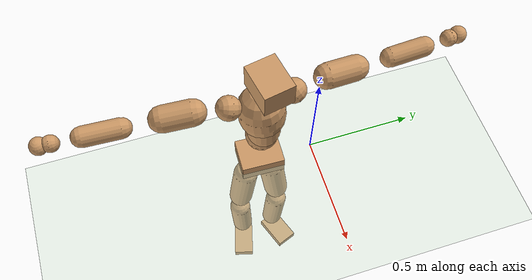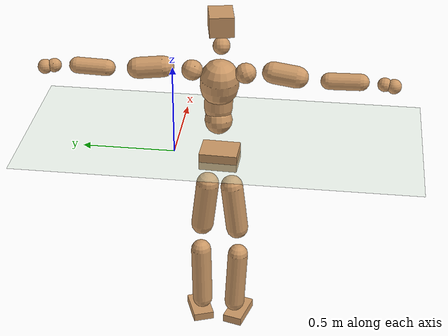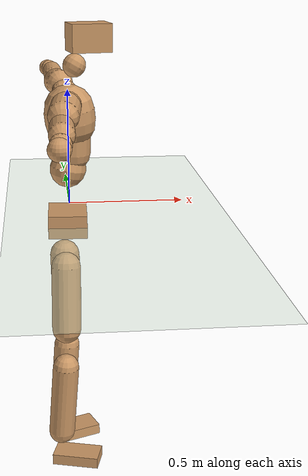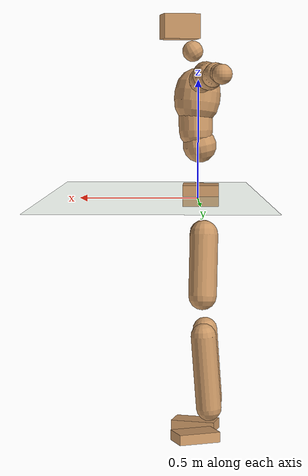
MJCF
<mujoco model="humanoid">
  <compiler coordinate="local" angle="radian"/>
  <default>
    <joint damping="0.0" armature="0.01" stiffness="0.0" limited="true"/>
    <geom conaffinity="1" condim="3" contype="7" margin="0.001" rgba="0.8 0.6 .4 1"/>
  </default>
  <asset>
    <texture type="skybox" builtin="gradient" rgb1=".4 .5 .6" rgb2="0 0 0" width="100" height="100"/>
    <texture builtin="flat" height="1278" mark="cross" markrgb="1 1 1" name="texgeom" random="0.01" rgb1="0.8 0.6 0.4" rgb2="0.8 0.6 0.4" type="cube" width="127"/>
    <texture builtin="checker" height="100" name="texplane" rgb1="0 0 0" rgb2="0.8 0.8 0.8" type="2d" width="100"/>
    <material name="MatPlane" reflectance="0.5" shininess="1" specular="1" texrepeat="60 60" texture="texplane"/>
    <material name="geom" texture="texgeom" texuniform="true"/>
  </asset>
  <worldbody>
    <light cutoff="100" diffuse="1 1 1" dir="-0 0 -1.3" directional="true" exponent="1" pos="0 0 1.3" specular=".1 .1 .1"/>
    <geom conaffinity="1" condim="3" name="floor" pos="0 0 0" rgba="0.8 0.9 0.8 1" size="100 100 .2" type="plane" material="MatPlane"/>
    <body name="Pelvis" pos="-0.0051 -0.249 0.0088">
      <freejoint name="Pelvis"/>
      <geom type="box" contype="1" conaffinity="1" density="5359.37496" pos="-0.0132 0.0005 -0.0093" size="0.0788 0.1017 0.0467" quat="0.9998 0.0000 0.0000 -0.0180" name="Pelvis"/>
      <body name="L_Hip" pos="-0.0287 0.0541 -0.089">
        <joint name="L_Hip_x" type="hinge" pos="0 0 0" axis="1 0 0" stiffness="1600" damping="160" armature="0.02" range="-180.0000 180.0000"/>
        <joint name="L_Hip_y" type="hinge" pos="0 0 0" axis="0 1 0" stiffness="1600" damping="160" armature="0.02" range="-180.0000 180.0000"/>
        <joint name="L_Hip_z" type="hinge" pos="0 0 0" axis="0 0 1" stiffness="1600" damping="160" armature="0.02" range="-180.0000 180.0000"/>
        <geom type="capsule" contype="1" conaffinity="1" density="2040.816327" size="0.062" fromto="0.0020 0.0107 -0.0914 0.0080 0.0421 -0.3607" name="L_Hip"/>
        <body name="L_Knee" pos="0.0101 0.0527 -0.4521">
          <joint name="L_Knee_x" type="hinge" pos="0 0 0" axis="1 0 0" stiffness="1600" damping="160" armature="0.02" range="-180.0000 180.0000"/>
          <joint name="L_Knee_y" type="hinge" pos="0 0 0" axis="0 1 0" stiffness="1600" damping="160" armature="0.02" range="-180.0000 180.0000"/>
          <joint name="L_Knee_z" type="hinge" pos="0 0 0" axis="0 0 1" stiffness="1600" damping="160" armature="0.02" range="-180.0000 180.0000"/>
          <geom type="capsule" contype="1" conaffinity="1" density="1234.567901" size="0.0561" fromto="-0.0067 -0.0026 -0.0859 -0.0319 -0.0125 -0.4105" name="L_Knee"/>
          <body name="L_Ankle" pos="-0.0386 -0.0151 -0.4964">
            <joint name="L_Ankle_x" type="hinge" pos="0 0 0" axis="1 0 0" stiffness="1600" damping="160" armature="0.02" range="-180.0000 180.0000"/>
            <joint name="L_Ankle_y" type="hinge" pos="0 0 0" axis="0 1 0" stiffness="1600" damping="160" armature="0.02" range="-180.0000 180.0000"/>
            <joint name="L_Ankle_z" type="hinge" pos="0 0 0" axis="0 0 1" stiffness="1600" damping="160" armature="0.02" range="-180.0000 180.0000"/>
            <geom type="box" contype="1" conaffinity="1" density="999.999938" pos="0.0663 0.0249 -0.0347" size="0.0946 0.0573 0.0229" quat="0.9839 0.0000 0.0000 0.1789" name="L_Ankle"/>
            <body name="L_Toe" pos="0.1325 0.0499 -0.0693">
              <joint name="L_Toe_x" type="hinge" pos="0 0 0" axis="1 0 0" stiffness="1000" damping="100" armature="0.02" range="-180.0000 180.0000"/>
              <joint name="L_Toe_y" type="hinge" pos="0 0 0" axis="0 1 0" stiffness="1000" damping="100" armature="0.02" range="-180.0000 180.0000"/>
              <joint name="L_Toe_z" type="hinge" pos="0 0 0" axis="0 0 1" stiffness="1000" damping="100" armature="0.02" range="-180.0000 180.0000"/>
              <geom type="box" contype="1" conaffinity="1" density="7631052.855685" pos="0.0000 0.0000 0.0365" size="0.0011 0.0027 0.0012" quat="0.9831 0.0000 0.0000 0.1829" name="L_Toe"/>
            </body>
          </body>
        </body>
      </body>
      <body name="R_Hip" pos="-0.0252 -0.0565 -0.0982">
        <joint name="R_Hip_x" type="hinge" pos="0 0 0" axis="1 0 0" stiffness="1600" damping="160" armature="0.02" range="-180.0000 180.0000"/>
        <joint name="R_Hip_y" type="hinge" pos="0 0 0" axis="0 1 0" stiffness="1600" damping="160" armature="0.02" range="-180.0000 180.0000"/>
        <joint name="R_Hip_z" type="hinge" pos="0 0 0" axis="0 0 1" stiffness="1600" damping="160" armature="0.02" range="-180.0000 180.0000"/>
        <geom type="capsule" contype="1" conaffinity="1" density="2040.816327" size="0.061" fromto="-0.0012 -0.0108 -0.0903 -0.0049 -0.0429 -0.3580" name="R_Hip"/>
        <body name="R_Knee" pos="-0.0062 -0.0537 -0.4483">
          <joint name="R_Knee_x" type="hinge" pos="0 0 0" axis="1 0 0" stiffness="1600" damping="160" armature="0.02" range="-180.0000 180.0000"/>
          <joint name="R_Knee_y" type="hinge" pos="0 0 0" axis="0 1 0" stiffness="1600" damping="160" armature="0.02" range="-180.0000 180.0000"/>
          <joint name="R_Knee_z" type="hinge" pos="0 0 0" axis="0 0 1" stiffness="1600" damping="160" armature="0.02" range="-180.0000 180.0000"/>
          <geom type="capsule" contype="1" conaffinity="1" density="1234.567901" size="0.056" fromto="-0.0061 0.0039 -0.0857 -0.0291 0.0184 -0.4050" name="R_Knee"/>
          <body name="R_Ankle" pos="-0.0352 0.0223 -0.4906">
            <joint name="R_Ankle_x" type="hinge" pos="0 0 0" axis="1 0 0" stiffness="1600" damping="160" armature="0.02" range="-180.0000 180.0000"/>
            <joint name="R_Ankle_y" type="hinge" pos="0 0 0" axis="0 1 0" stiffness="1600" damping="160" armature="0.02" range="-180.0000 180.0000"/>
            <joint name="R_Ankle_z" type="hinge" pos="0 0 0" axis="0 0 1" stiffness="1600" damping="160" armature="0.02" range="-180.0000 180.0000"/>
            <geom type="box" contype="1" conaffinity="1" density="1000" pos="0.0719 -0.0197 -0.0359" size="0.0999 0.0541 0.0237" quat="0.9911 0.0000 0.0000 -0.1334" name="R_Ankle"/>
            <body name="R_Toe" pos="0.1439 -0.0395 -0.0719">
              <joint name="R_Toe_x" type="hinge" pos="0 0 0" axis="1 0 0" stiffness="1000" damping="100" armature="0.02" range="-180.0000 180.0000"/>
              <joint name="R_Toe_y" type="hinge" pos="0 0 0" axis="0 1 0" stiffness="1000" damping="100" armature="0.02" range="-180.0000 180.0000"/>
              <joint name="R_Toe_z" type="hinge" pos="0 0 0" axis="0 0 1" stiffness="1000" damping="100" armature="0.02" range="-180.0000 180.0000"/>
              <geom type="box" contype="1" conaffinity="1" density="8385273.209025" pos="0.0000 0.0000 0.0378" size="0.001 0.0026 0.0013" quat="0.9921 0.0000 0.0000 -0.1253" name="R_Toe"/>
            </body>
          </body>
        </body>
      </body>
      <body name="Torso" pos="-0.025 0.0052 0.1311">
        <joint name="Torso_x" type="hinge" pos="0 0 0" axis="1 0 0" stiffness="2000" damping="200" armature="0.02" range="-180.0000 180.0000"/>
        <joint name="Torso_y" type="hinge" pos="0 0 0" axis="0 1 0" stiffness="2000" damping="200" armature="0.02" range="-180.0000 180.0000"/>
        <joint name="Torso_z" type="hinge" pos="0 0 0" axis="0 0 1" stiffness="2000" damping="200" armature="0.02" range="-180.0000 180.0000"/>
        <geom type="capsule" contype="1" conaffinity="1" density="2040.816327" size="0.074" fromto="0.0173 0.0025 0.0764 0.0177 0.0026 0.0783" name="Torso"/>
        <body name="Spine" pos="0.0349 0.0052 0.1547">
          <joint name="Spine_x" type="hinge" pos="0 0 0" axis="1 0 0" stiffness="2000" damping="200" armature="0.02" range="-180.0000 180.0000"/>
          <joint name="Spine_y" type="hinge" pos="0 0 0" axis="0 1 0" stiffness="2000" damping="200" armature="0.02" range="-180.0000 180.0000"/>
          <joint name="Spine_z" type="hinge" pos="0 0 0" axis="0 0 1" stiffness="2000" damping="200" armature="0.02" range="-180.0000 180.0000"/>
          <geom type="capsule" contype="1" conaffinity="1" density="2040.816327" size="0.075" fromto="0.0022 -0.0025 0.0749 -0.0004 0.0004 -0.0127" name="Spine"/>
          <body name="Chest" pos="0.0018 -0.0021 0.0622">
            <joint name="Chest_x" type="hinge" pos="0 0 0" axis="1 0 0" stiffness="2000" damping="200" armature="0.02" range="-180.0000 180.0000"/>
            <joint name="Chest_y" type="hinge" pos="0 0 0" axis="0 1 0" stiffness="2000" damping="200" armature="0.02" range="-180.0000 180.0000"/>
            <joint name="Chest_z" type="hinge" pos="0 0 0" axis="0 0 1" stiffness="2000" damping="200" armature="0.02" range="-180.0000 180.0000"/>
            <geom type="capsule" contype="1" conaffinity="1" density="2040.816327" size="0.1012" fromto="-0.0106 -0.0055 0.1005 -0.0055 -0.0029 0.0521" name="Chest"/>
            <body name="Neck" pos="-0.0157 -0.0157 0.2222">
              <joint name="Neck_x" type="hinge" pos="0 0 0" axis="1 0 0" stiffness="1000" damping="100" armature="0.02" range="-180.0000 180.0000"/>
              <joint name="Neck_y" type="hinge" pos="0 0 0" axis="0 1 0" stiffness="1000" damping="100" armature="0.02" range="-180.0000 180.0000"/>
              <joint name="Neck_z" type="hinge" pos="0 0 0" axis="0 0 1" stiffness="1000" damping="100" armature="0.02" range="-180.0000 180.0000"/>
              <geom type="capsule" contype="1" conaffinity="1" density="1000" size="0.0452" fromto="0.0278 0.0044 0.0517 0.0288 0.0046 0.0534" name="Neck"/>
              <body name="Head" pos="0.0566 0.009 0.1051">
                <joint name="Head_x" type="hinge" pos="0 0 0" axis="1 0 0" stiffness="1000" damping="100" armature="0.02" range="-180.0000 180.0000"/>
                <joint name="Head_y" type="hinge" pos="0 0 0" axis="0 1 0" stiffness="1000" damping="100" armature="0.02" range="-180.0000 180.0000"/>
                <joint name="Head_z" type="hinge" pos="0 0 0" axis="0 0 1" stiffness="1000" damping="100" armature="0.02" range="-180.0000 180.0000"/>
                <geom type="box" contype="1" conaffinity="1" density="2249.999807" pos="0.0293 0.0055 0.0535" size="0.0792 0.0632 0.0541" quat="0.9957 0.0000 0.0000 0.0922" name="Head"/>
              </body>
            </body>
            <body name="L_Thorax" pos="-0.0139 0.0748 0.1191">
              <joint name="L_Thorax_x" type="hinge" pos="0 0 0" axis="1 0 0" stiffness="1000" damping="100" armature="0.02" range="-180.0000 180.0000"/>
              <joint name="L_Thorax_y" type="hinge" pos="0 0 0" axis="0 1 0" stiffness="1000" damping="100" armature="0.02" range="-180.0000 180.0000"/>
              <joint name="L_Thorax_z" type="hinge" pos="0 0 0" axis="0 0 1" stiffness="1000" damping="100" armature="0.02" range="-180.0000 180.0000"/>
              <geom type="capsule" contype="1" conaffinity="1" density="1000" size="0.0542" fromto="-0.0080 0.0604 0.0258 -0.0082 0.0622 0.0266" name="L_Thorax"/>
              <body name="L_Shoulder" pos="-0.0162 0.1226 0.0523">
                <joint name="L_Shoulder_x" type="hinge" pos="0 0 0" axis="1 0 0" stiffness="1000" damping="100" armature="0.02" range="-720.0000 720.0000"/>
                <joint name="L_Shoulder_y" type="hinge" pos="0 0 0" axis="0 1 0" stiffness="1000" damping="100" armature="0.02" range="-720.0000 720.0000"/>
                <joint name="L_Shoulder_z" type="hinge" pos="0 0 0" axis="0 0 1" stiffness="1000" damping="100" armature="0.02" range="-720.0000 720.0000"/>
                <geom type="capsule" contype="1" conaffinity="1" density="1000" size="0.0556" fromto="-0.0066 0.0850 -0.0075 -0.0169 0.2170 -0.0191" name="L_Shoulder"/>
                <body name="L_Elbow" pos="-0.0236 0.302 -0.0266">
                  <joint name="L_Elbow_x" type="hinge" pos="0 0 0" axis="1 0 0" stiffness="1000" damping="100" armature="0.02" range="-720.0000 720.0000"/>
                  <joint name="L_Elbow_y" type="hinge" pos="0 0 0" axis="0 1 0" stiffness="1000" damping="100" armature="0.02" range="-720.0000 720.0000"/>
                  <joint name="L_Elbow_z" type="hinge" pos="0 0 0" axis="0 0 1" stiffness="1000" damping="100" armature="0.02" range="-720.0000 720.0000"/>
                  <geom type="capsule" contype="1" conaffinity="1" density="1000" size="0.0427" fromto="-0.0022 0.0726 0.0035 -0.0069 0.2269 0.0109" name="L_Elbow"/>
                  <body name="L_Wrist" pos="-0.0091 0.2995 0.0144">
                    <joint name="L_Wrist_x" type="hinge" pos="0 0 0" axis="1 0 0" stiffness="600" damping="60" armature="0.02" range="-180.0000 180.0000"/>
                    <joint name="L_Wrist_y" type="hinge" pos="0 0 0" axis="0 1 0" stiffness="600" damping="60" armature="0.02" range="-180.0000 180.0000"/>
                    <joint name="L_Wrist_z" type="hinge" pos="0 0 0" axis="0 0 1" stiffness="600" damping="60" armature="0.02" range="-180.0000 180.0000"/>
                    <geom type="capsule" contype="1" conaffinity="1" density="1000" size="0.0362" fromto="-0.0085 0.0457 -0.0055 -0.0089 0.0477 -0.0058" name="L_Wrist"/>
                    <body name="L_Hand" pos="-0.0174 0.0934 -0.0113">
                      <joint name="L_Hand_x" type="hinge" pos="0 0 0" axis="1 0 0" stiffness="600" damping="60" armature="0.02" range="-180.0000 180.0000"/>
                      <joint name="L_Hand_y" type="hinge" pos="0 0 0" axis="0 1 0" stiffness="600" damping="60" armature="0.02" range="-180.0000 180.0000"/>
                      <joint name="L_Hand_z" type="hinge" pos="0 0 0" axis="0 0 1" stiffness="600" damping="60" armature="0.02" range="-180.0000 180.0000"/>
                      <geom type="sphere" contype="1" conaffinity="1" density="1000" size="0.0382" pos="0.0000 0.0000 0.0000" name="L_Hand"/>
                    </body>
                  </body>
                </body>
              </body>
            </body>
            <body name="R_Thorax" pos="-0.0188 -0.0842 0.1165">
              <joint name="R_Thorax_x" type="hinge" pos="0 0 0" axis="1 0 0" stiffness="1000" damping="100" armature="0.02" range="-180.0000 180.0000"/>
              <joint name="R_Thorax_y" type="hinge" pos="0 0 0" axis="0 1 0" stiffness="1000" damping="100" armature="0.02" range="-180.0000 180.0000"/>
              <joint name="R_Thorax_z" type="hinge" pos="0 0 0" axis="0 0 1" stiffness="1000" damping="100" armature="0.02" range="-180.0000 180.0000"/>
              <geom type="capsule" contype="1" conaffinity="1" density="1000" size="0.0537" fromto="-0.0022 -0.0550 0.0263 -0.0022 -0.0568 0.0271" name="R_Thorax"/>
              <body name="R_Shoulder" pos="-0.0044 -0.1118 0.0534">
                <joint name="R_Shoulder_x" type="hinge" pos="0 0 0" axis="1 0 0" stiffness="1000" damping="100" armature="0.02" range="-720.0000 720.0000"/>
                <joint name="R_Shoulder_y" type="hinge" pos="0 0 0" axis="0 1 0" stiffness="1000" damping="100" armature="0.02" range="-720.0000 720.0000"/>
                <joint name="R_Shoulder_z" type="hinge" pos="0 0 0" axis="0 0 1" stiffness="1000" damping="100" armature="0.02" range="-720.0000 720.0000"/>
                <geom type="capsule" contype="1" conaffinity="1" density="1000" size="0.0564" fromto="-0.0095 -0.0855 -0.0079 -0.0234 -0.2112 -0.0195" name="R_Shoulder"/>
                <body name="R_Elbow" pos="-0.0328 -0.2968 -0.0275">
                  <joint name="R_Elbow_x" type="hinge" pos="0 0 0" axis="1 0 0" stiffness="1000" damping="100" armature="0.02" range="-720.0000 720.0000"/>
                  <joint name="R_Elbow_y" type="hinge" pos="0 0 0" axis="0 1 0" stiffness="1000" damping="100" armature="0.02" range="-720.0000 720.0000"/>
                  <joint name="R_Elbow_z" type="hinge" pos="0 0 0" axis="0 0 1" stiffness="1000" damping="100" armature="0.02" range="-720.0000 720.0000"/>
                  <geom type="capsule" contype="1" conaffinity="1" density="1000" size="0.0432" fromto="-0.0019 -0.0732 0.0026 -0.0060 -0.2317 0.0082" name="R_Elbow"/>
                  <body name="R_Wrist" pos="-0.0079 -0.3048 0.0108">
                    <joint name="R_Wrist_x" type="hinge" pos="0 0 0" axis="1 0 0" stiffness="600" damping="60" armature="0.02" range="-180.0000 180.0000"/>
                    <joint name="R_Wrist_y" type="hinge" pos="0 0 0" axis="0 1 0" stiffness="600" damping="60" armature="0.02" range="-180.0000 180.0000"/>
                    <joint name="R_Wrist_z" type="hinge" pos="0 0 0" axis="0 0 1" stiffness="600" damping="60" armature="0.02" range="-180.0000 180.0000"/>
                    <geom type="capsule" contype="1" conaffinity="1" density="1000" size="0.0358" fromto="-0.0055 -0.0455 -0.0044 -0.0057 -0.0475 -0.0045" name="R_Wrist"/>
                    <body name="R_Hand" pos="-0.0111 -0.093 -0.0089">
                      <joint name="R_Hand_x" type="hinge" pos="0 0 0" axis="1 0 0" stiffness="600" damping="60" armature="0.02" range="-180.0000 180.0000"/>
                      <joint name="R_Hand_y" type="hinge" pos="0 0 0" axis="0 1 0" stiffness="600" damping="60" armature="0.02" range="-180.0000 180.0000"/>
                      <joint name="R_Hand_z" type="hinge" pos="0 0 0" axis="0 0 1" stiffness="600" damping="60" armature="0.02" range="-180.0000 180.0000"/>
                      <geom type="sphere" contype="1" conaffinity="1" density="1000" size="0.0376" pos="0.0000 0.0000 0.0000" name="R_Hand"/>
                    </body>
                  </body>
                </body>
              </body>
            </body>
          </body>
        </body>
      </body>
    </body>
  </worldbody>
  <actuator>
    <motor name="L_Hip_x" joint="L_Hip_x" gear="500"/>
    <motor name="L_Hip_y" joint="L_Hip_y" gear="500"/>
    <motor name="L_Hip_z" joint="L_Hip_z" gear="500"/>
    <motor name="L_Knee_x" joint="L_Knee_x" gear="500"/>
    <motor name="L_Knee_y" joint="L_Knee_y" gear="500"/>
    <motor name="L_Knee_z" joint="L_Knee_z" gear="500"/>
    <motor name="L_Ankle_x" joint="L_Ankle_x" gear="500"/>
    <motor name="L_Ankle_y" joint="L_Ankle_y" gear="500"/>
    <motor name="L_Ankle_z" joint="L_Ankle_z" gear="500"/>
    <motor name="L_Toe_x" joint="L_Toe_x" gear="500"/>
    <motor name="L_Toe_y" joint="L_Toe_y" gear="500"/>
    <motor name="L_Toe_z" joint="L_Toe_z" gear="500"/>
    <motor name="R_Hip_x" joint="R_Hip_x" gear="500"/>
    <motor name="R_Hip_y" joint="R_Hip_y" gear="500"/>
    <motor name="R_Hip_z" joint="R_Hip_z" gear="500"/>
    <motor name="R_Knee_x" joint="R_Knee_x" gear="500"/>
    <motor name="R_Knee_y" joint="R_Knee_y" gear="500"/>
    <motor name="R_Knee_z" joint="R_Knee_z" gear="500"/>
    <motor name="R_Ankle_x" joint="R_Ankle_x" gear="500"/>
    <motor name="R_Ankle_y" joint="R_Ankle_y" gear="500"/>
    <motor name="R_Ankle_z" joint="R_Ankle_z" gear="500"/>
    <motor name="R_Toe_x" joint="R_Toe_x" gear="500"/>
    <motor name="R_Toe_y" joint="R_Toe_y" gear="500"/>
    <motor name="R_Toe_z" joint="R_Toe_z" gear="500"/>
    <motor name="Torso_x" joint="Torso_x" gear="500"/>
    <motor name="Torso_y" joint="Torso_y" gear="500"/>
    <motor name="Torso_z" joint="Torso_z" gear="500"/>
    <motor name="Spine_x" joint="Spine_x" gear="500"/>
    <motor name="Spine_y" joint="Spine_y" gear="500"/>
    <motor name="Spine_z" joint="Spine_z" gear="500"/>
    <motor name="Chest_x" joint="Chest_x" gear="500"/>
    <motor name="Chest_y" joint="Chest_y" gear="500"/>
    <motor name="Chest_z" joint="Chest_z" gear="500"/>
    <motor name="Neck_x" joint="Neck_x" gear="500"/>
    <motor name="Neck_y" joint="Neck_y" gear="500"/>
    <motor name="Neck_z" joint="Neck_z" gear="500"/>
    <motor name="Head_x" joint="Head_x" gear="500"/>
    <motor name="Head_y" joint="Head_y" gear="500"/>
    <motor name="Head_z" joint="Head_z" gear="500"/>
    <motor name="L_Thorax_x" joint="L_Thorax_x" gear="500"/>
    <motor name="L_Thorax_y" joint="L_Thorax_y" gear="500"/>
    <motor name="L_Thorax_z" joint="L_Thorax_z" gear="500"/>
    <motor name="L_Shoulder_x" joint="L_Shoulder_x" gear="500"/>
    <motor name="L_Shoulder_y" joint="L_Shoulder_y" gear="500"/>
    <motor name="L_Shoulder_z" joint="L_Shoulder_z" gear="500"/>
    <motor name="L_Elbow_x" joint="L_Elbow_x" gear="500"/>
    <motor name="L_Elbow_y" joint="L_Elbow_y" gear="500"/>
    <motor name="L_Elbow_z" joint="L_Elbow_z" gear="500"/>
    <motor name="L_Wrist_x" joint="L_Wrist_x" gear="500"/>
    <motor name="L_Wrist_y" joint="L_Wrist_y" gear="500"/>
    <motor name="L_Wrist_z" joint="L_Wrist_z" gear="500"/>
    <motor name="L_Hand_x" joint="L_Hand_x" gear="500"/>
    <motor name="L_Hand_y" joint="L_Hand_y" gear="500"/>
    <motor name="L_Hand_z" joint="L_Hand_z" gear="500"/>
    <motor name="R_Thorax_x" joint="R_Thorax_x" gear="500"/>
    <motor name="R_Thorax_y" joint="R_Thorax_y" gear="500"/>
    <motor name="R_Thorax_z" joint="R_Thorax_z" gear="500"/>
    <motor name="R_Shoulder_x" joint="R_Shoulder_x" gear="500"/>
    <motor name="R_Shoulder_y" joint="R_Shoulder_y" gear="500"/>
    <motor name="R_Shoulder_z" joint="R_Shoulder_z" gear="500"/>
    <motor name="R_Elbow_x" joint="R_Elbow_x" gear="500"/>
    <motor name="R_Elbow_y" joint="R_Elbow_y" gear="500"/>
    <motor name="R_Elbow_z" joint="R_Elbow_z" gear="500"/>
    <motor name="R_Wrist_x" joint="R_Wrist_x" gear="500"/>
    <motor name="R_Wrist_y" joint="R_Wrist_y" gear="500"/>
    <motor name="R_Wrist_z" joint="R_Wrist_z" gear="500"/>
    <motor name="R_Hand_x" joint="R_Hand_x" gear="500"/>
    <motor name="R_Hand_y" joint="R_Hand_y" gear="500"/>
    <motor name="R_Hand_z" joint="R_Hand_z" gear="500"/>
  </actuator>
  <contact>
    <exclude body1="Torso" body2="Chest"/>
    <exclude body1="Head" body2="Chest"/>
    <exclude body1="R_Knee" body2="R_Toe"/>
    <exclude body1="R_Knee" body2="L_Ankle"/>
    <exclude body1="R_Knee" body2="L_Toe"/>
    <exclude body1="L_Knee" body2="L_Toe"/>
    <exclude body1="L_Knee" body2="R_Ankle"/>
    <exclude body1="L_Knee" body2="R_Toe"/>
    <exclude body1="L_Shoulder" body2="Chest"/>
    <exclude body1="R_Shoulder" body2="Chest"/>
  </contact>
  <sensor/>
  <size njmax="700" nconmax="700"/>
</mujoco>
